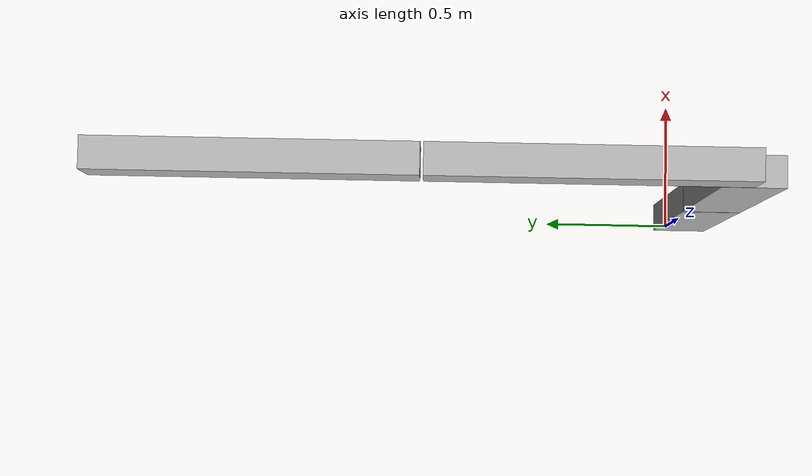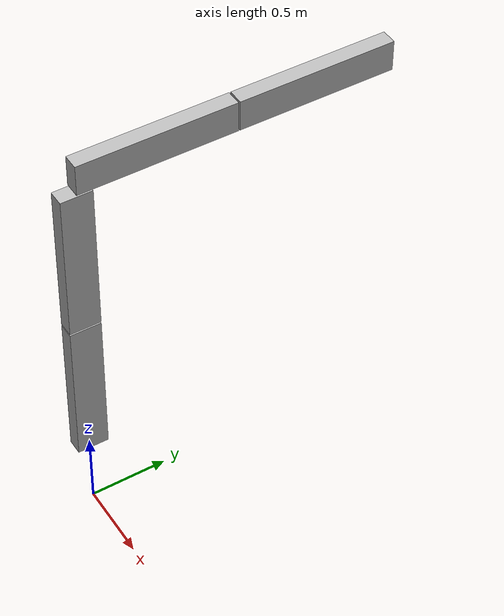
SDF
<?xml version="1.0" ?>
<sdf version="1.4">
  <world name="default">
    <physics type="ode">
      <gravity>0 0 0</gravity>
      <ode>
        <solver>
          <type>quick</type>
          <iters>1000</iters>
          <precon_iters>0</precon_iters>
          <sor>1.000000</sor>
        </solver>
        <constraints>
          <cfm>0.000000</cfm>
          <erp>0.200000</erp>
          <contact_max_correcting_vel>100.000000</contact_max_correcting_vel>
          <contact_surface_layer>0.01000</contact_surface_layer>
        </constraints>
      </ode>
      <bullet>
        <solver>
          <type>sequential_impulse</type>
          <iters>1000</iters>
          <sor>1.000000</sor>
        </solver>
        <constraints>
          <cfm>0.000000</cfm>
          <erp>0.200000</erp>
          <split_impulse>true</split_impulse>
          <split_impulse_penetration_threshold>-0.01</split_impulse_penetration_threshold>
          <contact_surface_layer>0.00000</contact_surface_layer>
        </constraints>
      </bullet>
      <real_time_update_rate>0.000000</real_time_update_rate>
      <max_step_size>0.001</max_step_size>
    </physics>
    <include>
      <uri>model://sun</uri>
    </include>

    <model name="model_1">
      <link name="link_1">
        <pose>0 0 0.5 0 0 0</pose>
        <inertial>
          <pose>0 0 0.5 0 0 0</pose>
          <inertia>
            <ixx>0.866666</ixx>
            <ixy>0.000000</ixy>
            <ixz>0.000000</ixz>
            <iyy>0.841666</iyy>
            <iyz>0.000000</iyz>
            <izz>0.041666</izz>
          </inertia>
          <mass>10.000000</mass>
        </inertial>
        <visual name="visual_box">
          <pose>0 0 0.5 0 0 0</pose>
          <geometry>
            <box>
              <size>0.1 0.2 1.0</size>
            </box>
          </geometry>
        </visual>
        <collision name="collision_box">
          <pose>0 0 0.5 0 0 0</pose>
          <max_contacts>250</max_contacts>
          <geometry>
            <box>
              <size>0.1 0.2 1.0</size>
            </box>
          </geometry>
        </collision>
      </link>

      <link name="link_2">
        <!-- 1cm gap between link_1 and link_2 -->
        <pose>0 0 1.51 0 0 0</pose>
        <inertial>
          <pose>0 0 0.5 0 0 0</pose>
          <inertia>
            <ixx>0.866666</ixx>
            <ixy>0.000000</ixy>
            <ixz>0.000000</ixz>
            <iyy>0.841666</iyy>
            <iyz>0.000000</iyz>
            <izz>0.041666</izz>
          </inertia>
          <mass>10.000000</mass>
        </inertial>
        <visual name="visual_box">
          <pose>0 0 0.5 0 0 0</pose>
          <geometry>
            <box>
              <size>0.1 0.2 1.0</size>
            </box>
          </geometry>
        </visual>
        <collision name="collision_box">
          <pose>0 0 0.5 0 0 0</pose>
          <geometry>
            <box>
              <size>0.1 0.2 1.0</size>
            </box>
          </geometry>
        </collision>
      </link>

      <link name="link_3">
        <pose>0 0 2.62 0 0 0</pose>
        <inertial>
          <pose>0 0.5 0 0 0 0</pose>
          <inertia>
            <ixx>0.866666</ixx>
            <ixy>0.000000</ixy>
            <ixz>0.000000</ixz>
            <iyy>0.041666</iyy>
            <iyz>0.000000</iyz>
            <izz>0.841666</izz>
          </inertia>
          <mass>10.000000</mass>
        </inertial>
        <visual name="visual_box">
          <pose>0 0.5 0 0 0 0</pose>
          <geometry>
            <box>
              <size>0.1 1.0 0.2</size>
            </box>
          </geometry>
        </visual>
        <collision name="collision_box">
          <pose>0 0 0.5 0 0 0</pose>
          <geometry>
            <box>
              <size>0.1 1.0 0.2</size>
            </box>
          </geometry>
        </collision>
      </link>

      <link name="link_4">
        <pose>0 1.01 2.62 0 0 0</pose>
        <inertial>
          <pose>0 0.5 0 0 0 0</pose>
          <inertia>
            <ixx>0.866666</ixx>
            <ixy>0.000000</ixy>
            <ixz>0.000000</ixz>
            <iyy>0.041666</iyy>
            <iyz>0.000000</iyz>
            <izz>0.841666</izz>
          </inertia>
          <mass>10.000000</mass>
        </inertial>
        <visual name="visual_box">
          <pose>0 0.5 0 0 0 0</pose>
          <geometry>
            <box>
              <size>0.1 1.0 0.2</size>
            </box>
          </geometry>
        </visual>
        <collision name="collision_box">
          <pose>0 0 0.5 0 0 0</pose>
          <geometry>
            <box>
              <size>0.1 1.0 0.2</size>
            </box>
          </geometry>
        </collision>
      </link>

      <joint name="joint_01" type="revolute">
        <parent>world</parent>
        <child>link_1</child>
        <!-- joint at origin of link_1 inertial frame -->
        <!-- moement arm from link_1 inertial frame to joint_01 is 0m -->
        <pose>0 0 0.0 0 0 0</pose>
        <axis>
          <limit>
            <lower>-1.57079</lower>
            <upper>3.1416</upper>
            <effort>1000.000000</effort>
            <velocity>-1.000000</velocity>
            <stiffness>1e8</stiffness>
            <dissipation>1.0</dissipation>
          </limit>
          <dynamics>
            <damping>0.000000</damping>
            <friction>0.000000</friction>
          </dynamics>
          <xyz>1.000000 0.000000 0.000000</xyz>
        </axis>
        <sensor name="force_torque" type="force_torque">
          <always_on>true</always_on>
          <visualize>true</visualize>
          <update_rate>30</update_rate>
        </sensor>
        <physics>
          <provide_feedback>true</provide_feedback>
          <implicit_spring_damper>true</implicit_spring_damper>
          <ode>
            <!-- for constrained directions -->
            <cfm>0.0</cfm>
            <erp>0.2</erp>
            <bounce>0.0</bounce>
            <limit>
              <!-- for limits -->
              <cfm>0.0</cfm>
              <erp>0.2</erp>
            </limit>
          </ode>
        </physics>
      </joint>

      <joint name="joint_12" type="revolute">
        <parent>link_1</parent>
        <child>link_2</child>
        <!-- joint_1 at origin of link_2 link frame -->
        <!-- moement arm from link_2 inertial frame to joint_01 is 2m -->
        <!-- moement arm from link_2 inertial frame to joint_12 is 0.5m -->
        <pose>0 0 0 0 0 0</pose>
        <axis>
          <limit>
            <lower>-4.0</lower>
            <upper>4.0</upper>
            <effort>10000.000000</effort>
            <velocity>-1.000000</velocity>
            <stiffness>1e8</stiffness>
            <dissipation>1.0</dissipation>
          </limit>
          <dynamics>
            <damping>0.000000</damping>
            <friction>0.000000</friction>
          </dynamics>
          <xyz>0.000000 0.000000 1.000000</xyz>
        </axis>
        <sensor name="force_torque" type="force_torque">
          <always_on>true</always_on>
          <visualize>true</visualize>
          <update_rate>30</update_rate>
        </sensor>
        <physics>
          <provide_feedback>true</provide_feedback>
          <implicit_spring_damper>true</implicit_spring_damper>
          <ode>
            <!-- for constrained directions -->
            <cfm>0.0</cfm>
            <erp>0.2</erp>
            <bounce>0.0</bounce>
            <limit>
              <!-- for limits -->
              <cfm>0.0</cfm>
              <erp>0.2</erp>
            </limit>
          </ode>
        </physics>
      </joint>

      <joint name="joint_23" type="revolute">
        <parent>link_2</parent>
        <child>link_3</child>
        <!-- joint_1 at origin of link_2 link frame -->
        <!-- moement arm from link_2 inertial frame to joint_01 is 2m -->
        <!-- moement arm from link_2 inertial frame to joint_12 is 0.5m -->
        <pose>0 0 0 0 0 0</pose>
        <axis>
          <limit>
            <lower>-1.3</lower>
            <upper>1.0</upper>
            <effort>10000.000000</effort>
            <velocity>-1.000000</velocity>
            <stiffness>1e8</stiffness>
            <dissipation>1.0</dissipation>
          </limit>
          <dynamics>
            <damping>0.000000</damping>
            <friction>0.000000</friction>
          </dynamics>
          <xyz>0.000000 0.000000 1.000000</xyz>
        </axis>
        <sensor name="force_torque" type="force_torque">
          <always_on>true</always_on>
          <visualize>true</visualize>
          <update_rate>30</update_rate>
        </sensor>
        <physics>
          <provide_feedback>true</provide_feedback>
          <implicit_spring_damper>true</implicit_spring_damper>
          <ode>
            <!-- for constrained directions -->
            <cfm>0.0</cfm>
            <erp>0.2</erp>
            <bounce>0.0</bounce>
            <limit>
              <!-- for limits -->
              <cfm>0.0</cfm>
              <erp>0.2</erp>
            </limit>
          </ode>
        </physics>
      </joint>

      <joint name="joint_34" type="revolute">
        <parent>link_3</parent>
        <child>link_4</child>
        <!-- joint_1 at origin of link_2 link frame -->
        <!-- moement arm from link_2 inertial frame to joint_01 is 2m -->
        <!-- moement arm from link_2 inertial frame to joint_12 is 0.5m -->
        <pose>0 0 0 0 0 0</pose>
        <axis>
          <limit>
            <lower>-1.0</lower>
            <upper>1.2</upper>
            <effort>10000.000000</effort>
            <velocity>-1.000000</velocity>
            <stiffness>1e8</stiffness>
            <dissipation>1.0</dissipation>
          </limit>
          <dynamics>
            <damping>0.000000</damping>
            <friction>0.000000</friction>
          </dynamics>
          <xyz>0.000000 0.000000 1.000000</xyz>
        </axis>
        <sensor name="force_torque" type="force_torque">
          <always_on>true</always_on>
          <visualize>true</visualize>
          <update_rate>30</update_rate>
        </sensor>
        <physics>
          <provide_feedback>true</provide_feedback>
          <implicit_spring_damper>true</implicit_spring_damper>
          <ode>
            <!-- for constrained directions -->
            <cfm>0.0</cfm>
            <erp>0.2</erp>
            <bounce>0.0</bounce>
            <limit>
              <!-- for limits -->
              <cfm>0.0</cfm>
              <erp>0.2</erp>
            </limit>
          </ode>
        </physics>
      </joint>
    </model>
  </world>
</sdf>
